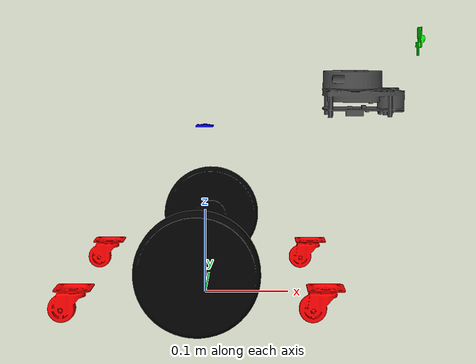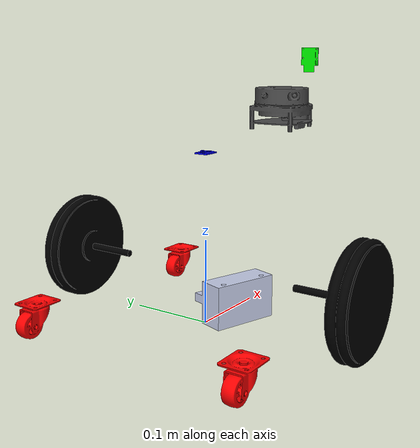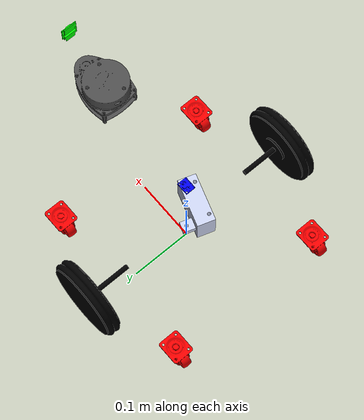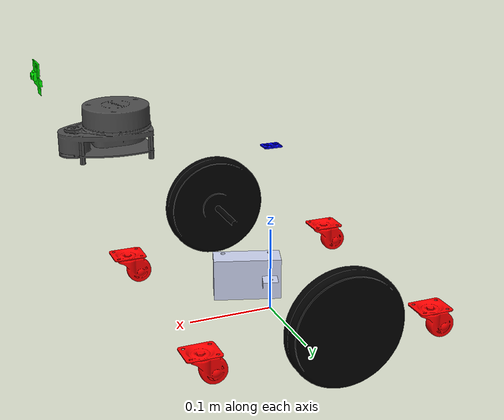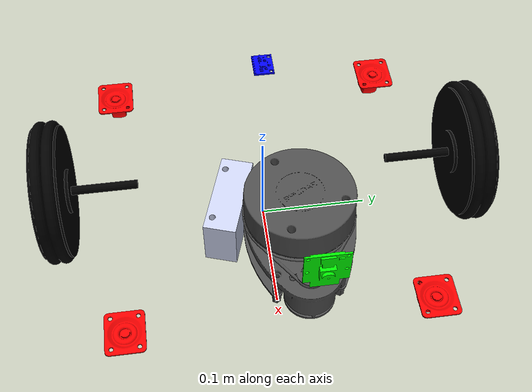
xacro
<?xml version="1.0"?>

<robot name="panda" xmlns:xacro="http://www.ros.org/wiki/xacro">

  <xacro:include filename="$(find panda_description)/urdf/properties.xacro" />
  <xacro:include filename="$(find panda_description)/urdf/gazebo.xacro" />
  <xacro:include filename="$(find panda_description)/urdf/ros2_control.xacro" />

  <link name="base_footprint" />

  <link name="base_link">
    <inertial>
      <origin xyz="0 0 0.15" rpy="0 0 0" />
      <mass value="27.2119271741661" />
      <inertia ixx="0.667544367089829" ixy="-0.003644303012145" ixz="1.56369460427123E-05"
        iyy="0.793696306041955" iyz="8.83618414198071E-06"
        izz="0.5250808338668" />
    </inertial>
    <visual>
      <origin xyz="0 0 0" rpy="0 0 0" />
      <geometry>
        <mesh filename="package://panda_description/meshes/base_link.STL" />
      </geometry>
      <material name="silver" />
    </visual>
    <collision>
      <origin xyz="0 0 0" rpy="0 0 0" />
      <geometry>
        <mesh filename="package://panda_description/meshes/base_link.STL" />
      </geometry>
    </collision>
  </link>

  <joint name="base_joint" type="fixed">
    <parent link="base_footprint" />
    <child link="base_link" />
    <origin xyz="0 0 ${base_height}" rpy="0 0 0" />
  </joint>

  <link name="wheel_right_link">
    <inertial>
      <origin xyz="-9.38145109998561E-19 0 0.00334648564566739" rpy="0 0 0" />
      <mass value="0.111217499574579" />
      <inertia ixx="0.00015302939399365" ixy="4.66148195875658E-36" ixz="-2.49507876350236E-20"
        iyy="0.00015302939399365" iyz="2.41933526116629E-37"
        izz="0.000296413441143407" />
    </inertial>
    <visual>
      <origin xyz="0 0 0" rpy="${pi / 2.0} 0 0" />
      <geometry>
        <mesh filename="package://panda_description/meshes/wheel_right_link.STL" />
      </geometry>
      <material name="black" />
    </visual>
    <collision>
      <origin xyz="0 0 0" rpy="${pi / 2.0} 0 0" />
      <geometry>
        <sphere radius="${wheel_radius}" />
      </geometry>
    </collision>
  </link>

  <joint name="wheel_right_joint" type="continuous">
    <origin xyz="0 -${wheel_separation / 2.0} 0.027" rpy="0 0 0" />
    <parent link="base_link" />
    <child link="wheel_right_link" />
    <axis xyz="0 1 0" />
  </joint>

  <link name="wheel_left_link">
    <inertial>
      <origin xyz="-9.38145109998561E-19 -3.46944695195361E-18 0.00334648564566742" rpy="0 0 0" />
      <mass value="0.111217499574579" />
      <inertia ixx="0.00015302939399365" ixy="4.66148195875658E-36" ixz="-2.49507876350236E-20"
        iyy="0.00015302939399365" iyz="2.41933526116628E-37"
        izz="0.000296413441143407" />
    </inertial>
    <visual>
      <origin xyz="0 0 0" rpy="-${pi / 2.0} 0 0" />
      <geometry>
        <mesh filename="package://panda_description/meshes/wheel_left_link.STL" />
      </geometry>
      <material name="black" />
    </visual>
    <collision>
      <origin xyz="0 0 0" rpy="-${pi / 2.0} 0 0" />
      <geometry>
        <sphere radius="${wheel_radius}" />
      </geometry>
    </collision>
  </link>

  <joint name="wheel_left_joint" type="continuous">
    <origin xyz="0 ${wheel_separation / 2.0} 0.027" rpy="0 0 0" />
    <parent link="base_link" />
    <child link="wheel_left_link" />
    <axis xyz="0 1 0" />
  </joint>

  <link name="caster_wheel_front_right_link">
    <inertial>
      <origin xyz="0.000112106039951765 -0.0131001965791396 -0.00971891663055621" rpy="0 0 0" />
      <mass value="0.0122759606521629" />
      <inertia ixx="1.34725401056239E-06" ixy="-8.24603487493509E-13" ixz="6.97336372879413E-13"
        iyy="1.26067796832325E-06" iyz="-4.08890600093701E-08"
        izz="9.88954361954789E-07" />
    </inertial>
    <visual>
      <origin xyz="0 0 0" rpy="${pi / 2.0} 0 ${pi / 2.0}" />
      <geometry>
        <mesh filename="package://panda_description/meshes/caster_wheel_front_right_link.STL" />
      </geometry>
      <material name="red" />
    </visual>
    <collision>
      <origin xyz="0 0 -0.0148" rpy="${pi / 2.0} 0 ${pi / 2.0}" />
      <geometry>
        <sphere radius="${caster_radius}" />
      </geometry>
    </collision>
  </link>

  <joint name="caster_wheel_front_right_joint" type="fixed">
    <origin xyz="0.135 -0.135 -0.0042" rpy="0 0 0" />
    <parent link="base_link" />
    <child link="caster_wheel_front_right_link" />
  </joint>

  <link name="caster_wheel_rear_right_link">
    <inertial>
      <origin xyz="0.0121121060399519 -0.0173001965791396 -0.0242189166305561" rpy="0 0 0" />
      <mass value="0.0122759606521629" />
      <inertia ixx="1.34725401056239E-06" ixy="-8.24603487753672E-13" ixz="6.97336374806176E-13"
        iyy="1.26067796832325E-06" iyz="-4.08890600093691E-08"
        izz="9.88954361954788E-07" />
    </inertial>
    <visual>
      <origin xyz="0 0 0" rpy="${pi / 2.0} 0 ${pi / 2.0}" />
      <geometry>
        <mesh
          filename="package://panda_description/meshes/caster_wheel_rear_right_link.STL" />
      </geometry>
      <material name="red" />
    </visual>
    <collision>
      <origin xyz="0 0 -0.019" rpy="${pi / 2.0} 0 ${pi / 2.0}" />
      <geometry>
        <sphere radius="${caster_radius}" />
      </geometry>
    </collision>
  </link>

  <joint name="caster_wheel_rear_right_joint" type="fixed">
    <origin xyz="-0.1205 -0.147 0" rpy="0 0 0" />
    <parent link="base_link" />
    <child link="caster_wheel_rear_right_link" />
  </joint>

  <link name="caster_wheel_front_left_link">
    <inertial>
      <origin xyz="0.000112106039951709 -0.0131001965791396 -0.00971891663055621" rpy="0 0 0" />
      <mass value="0.0122759606521629" />
      <inertia ixx="1.34725401056239E-06" ixy="-8.24603488448647E-13" ixz="6.97336372385257E-13"
        iyy="1.26067796832324E-06" iyz="-4.08890600093696E-08"
        izz="9.88954361954788E-07" />
    </inertial>
    <visual>
      <origin xyz="0 0 0" rpy="${pi / 2.0} 0 ${pi / 2.0}" />
      <geometry>
        <mesh filename="package://panda_description/meshes/caster_wheel_front_left_link.STL" />
      </geometry>
      <material name="red" />
    </visual>
    <collision>
      <origin xyz="0 0 -0.0148" rpy="${pi / 2.0} 0 ${pi / 2.0}" />
      <geometry>
        <sphere radius="${caster_radius}" />
      </geometry>
    </collision>
  </link>

  <joint name="caster_wheel_front_left_joint" type="fixed">
    <origin xyz="0.135 0.135 -0.0042" rpy="0 0 0" />
    <parent link="base_link" />
    <child link="caster_wheel_front_left_link" />
  </joint>

  <link name="caster_wheel_rear_left_link">
    <inertial>
      <origin xyz="-0.0118878939600484 -0.0173001965791396 -0.0242189166305562" rpy="0 0 0" />
      <mass value="0.0122759606521629" />
      <inertia ixx="1.34725401056239E-06" ixy="-8.24603488571671E-13" ixz="6.97336372914852E-13"
        iyy="1.26067796832324E-06" iyz="-4.08890600093696E-08"
        izz="9.88954361954787E-07" />
    </inertial>
    <visual>
      <origin xyz="0 0 0" rpy="${pi / 2.0} 0 ${pi / 2.0}" />
      <geometry>
        <mesh filename="package://panda_description/meshes/caster_wheel_rear_left_link.STL" />
      </geometry>
      <material name="red" />
    </visual>
    <collision>
      <origin xyz="0 0 -0.019" rpy="${pi / 2.0} 0 ${pi / 2.0}" />
      <geometry>
        <sphere radius="${caster_radius}" />
      </geometry>
    </collision>
  </link>

  <joint name="caster_wheel_rear_left_joint" type="fixed">
    <origin xyz="-0.1205 0.147 0" rpy="0 0 0" />
    <parent link="base_link" />
    <child link="caster_wheel_rear_left_link" />
  </joint>

  <link name="laser_link">
    <inertial>
      <origin xyz="0.0119602386099803 -0.0188648851800478 0.000532090618963833" rpy="0 0 0" />
      <mass value="0.0730845774621507" />
      <inertia ixx="1.95808776994119E-05" ixy="-4.2839086389841E-07" ixz="1.03933478323725E-07"
        iyy="4.1418456096352E-05" iyz="-9.42692746965273E-09"
        izz="2.4125010573956E-05" />
    </inertial>
    <visual>
      <origin xyz="0 0 0" rpy="${pi / 2.0} 0 0" />
      <geometry>
        <mesh filename="package://panda_description/meshes/laser_link.STL" />
      </geometry>
      <material name="dark_grey" />
    </visual>
    <collision>
      <origin xyz="0 0 0" rpy="${pi / 2.0} 0 0" />
      <geometry>
        <mesh filename="package://panda_description/meshes/laser_link.STL" />
      </geometry>
    </collision>
  </link>

  <joint name="laser_joint" type="fixed">
    <origin xyz="0.175 0 0.2186" rpy="0 0 0" />
    <parent link="base_link" />
    <child link="laser_link" />
  </joint>

  <link name="camera_link">
    <inertial>
      <origin xyz="2.31886151408309E-06 -0.00106361339497069 0.000514343154120966" rpy="0 0 0" />
      <mass value="0.00160268303296125" />
      <inertia ixx="7.970311297773E-08" ixy="1.0151638717881E-10" ixz="-8.24682351021939E-11"
        iyy="5.65342538259224E-08" iyz="3.24601279851475E-09"
        izz="1.26907371506856E-07" />
    </inertial>
    <visual>
      <origin xyz="0 0 0" rpy="${pi / 2.0} 0 -${pi / 2.0}" />
      <geometry>
        <mesh filename="package://panda_description/meshes/camera_link.STL" />
      </geometry>
      <material name="green" />
    </visual>
    <collision>
      <origin xyz="0 0 0" rpy="${pi / 2.0} 0 -${pi / 2.0}" />
      <geometry>
        <mesh filename="package://panda_description/meshes/camera_link.STL" />
      </geometry>
    </collision>
  </link>

  <joint name="camera_joint" type="fixed">
    <origin xyz="0.2537 0 0.2675" rpy="0 0 0" />
    <parent link="base_link" />
    <child link="camera_link" />
  </joint>

  <link name="camera_optical_frame" />

  <joint name="camera_optical_joint" type="fixed">
    <parent link="camera_link" />
    <child link="camera_optical_frame" />
    <origin xyz="0 0 0" rpy="${-pi / 2.0} 0 ${-pi / 2.0}" />
  </joint>

  <link name="imu_link">
    <inertial>
      <origin xyz="-3.13553361114438E-05 -1.22263927008167E-05 -0.000584623678460128" rpy="0 0 0" />
      <mass value="0.000528415362211671" />
      <inertia ixx="8.59427875965147E-09" ixy="7.39803301464271E-11" ixz="7.58988806787929E-12"
        iyy="1.46199509127234E-08" iyz="1.7279463159331E-12"
        izz="2.30279421279312E-08" />
    </inertial>
    <visual>
      <origin xyz="0 0 0" rpy="0 0 0" />
      <geometry>
        <mesh filename="package://panda_description/meshes/imu_link.STL" />
      </geometry>
      <material name="blue" />
    </visual>
    <collision>
      <origin xyz="0 0 0" rpy="0 0 0" />
      <geometry>
        <mesh filename="package://panda_description/meshes/imu_link.STL" />
      </geometry>
    </collision>
  </link>

  <joint name="imu_joint" type="fixed">
    <origin xyz="0 0 0.164" rpy="0 0 0" />
    <parent link="base_link" />
    <child link="imu_link" />
  </joint>

</robot>

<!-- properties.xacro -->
<robot name="panda" xmlns:xacro="http://www.ros.org/wiki/xacro">

    <xacro:property name="base_height" value="0.038" />
    <xacro:property name="wheel_radius" value="0.065" />
    <xacro:property name="wheel_separation" value="0.37" />
    <xacro:property name="caster_diameter" value="0.038" />
    <xacro:property name="caster_radius" value="${caster_diameter / 2.0}" />

    <!-- material color -->
    <material name="red">
        <color rgba="1 0 0 1" />
    </material>
    <material name="green">
        <color rgba="0 1 0 1" />
    </material>
    <material name="blue">
        <color rgba="0 0 1 1" />
    </material>
    <material name="black">
        <color rgba="0 0 0 1" />
    </material>
    <material name="silver">
        <color rgba="0.79 0.82 0.93 1" />
    </material>
    <material name="dark_grey">
        <color rgba="0.3 0.3 0.3 1" />
    </material>

</robot>
